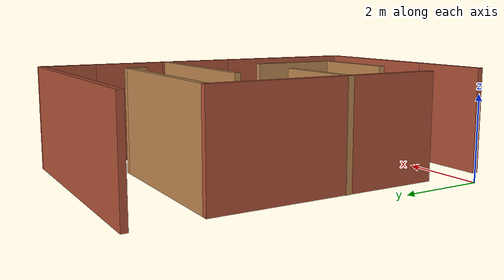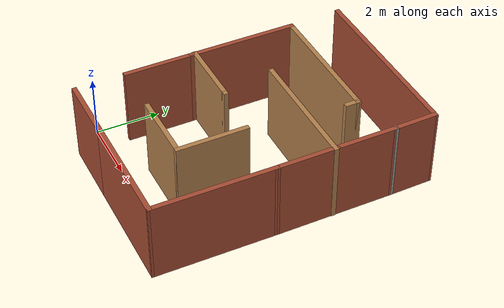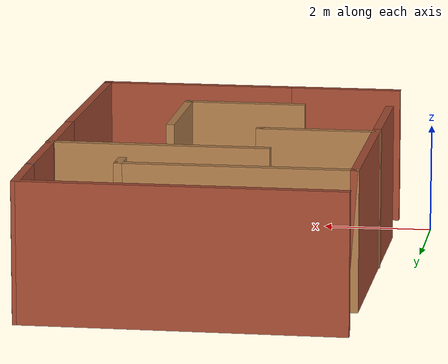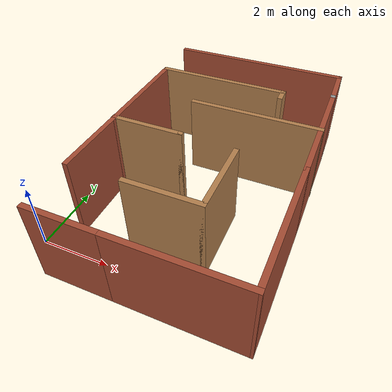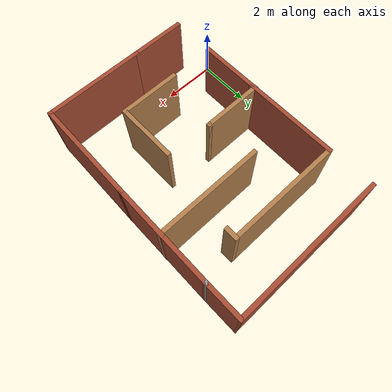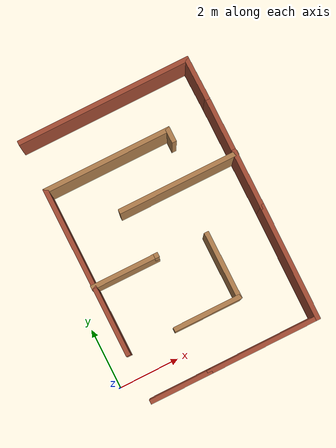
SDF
<?xml version='1.0'?>
<sdf version='1.7'>
  <model name='maze'>
    <pose>3.19342 3.57902 0 0 -0 0</pose>
    <link name='Wall_11'>
      <collision name='Wall_11_Collision'>
        <geometry>
          <box>
            <size>2 0.15 2.5</size>
          </box>
        </geometry>
        <pose>0 0 1.25 0 -0 0</pose>
      </collision>
      <visual name='Wall_11_Visual'>
        <pose>0 0 1.25 0 -0 0</pose>
        <geometry>
          <box>
            <size>2 0.15 2.5</size>
          </box>
        </geometry>
        <material>
          <script>
            <uri>file://media/materials/scripts/gazebo.material</uri>
            <name>Gazebo/Bricks</name>
          </script>
          <ambient>1 1 1 1</ambient>
        </material>
        <meta>
          <layer>0</layer>
        </meta>
      </visual>
      <pose>3.10411 0.27256 0 0 -0 1.5708</pose>
    </link>
    <link name='Wall_12'>
      <collision name='Wall_12_Collision'>
        <geometry>
          <box>
            <size>2 0.15 2.5</size>
          </box>
        </geometry>
        <pose>0 0 1.25 0 -0 0</pose>
      </collision>
      <visual name='Wall_12_Visual'>
        <pose>0 0 1.25 0 -0 0</pose>
        <geometry>
          <box>
            <size>2 0.15 2.5</size>
          </box>
        </geometry>
        <material>
          <script>
            <uri>file://media/materials/scripts/gazebo.material</uri>
            <name>Gazebo/Bricks</name>
          </script>
          <ambient>1 1 1 1</ambient>
        </material>
        <meta>
          <layer>0</layer>
        </meta>
      </visual>
      <pose>3.10411 2.12256 0 0 -0 1.5708</pose>
    </link>
    <link name='Wall_13'>
      <collision name='Wall_13_Collision'>
        <geometry>
          <box>
            <size>0.15 0.15 2.5</size>
          </box>
        </geometry>
        <pose>0 0 1.25 0 -0 0</pose>
      </collision>
      <visual name='Wall_13_Visual'>
        <pose>0 0 1.25 0 -0 0</pose>
        <geometry>
          <box>
            <size>0.15 0.15 2.5</size>
          </box>
        </geometry>
        <material>
          <script>
            <uri>file://media/materials/scripts/gazebo.material</uri>
            <name>Gazebo/Grey</name>
          </script>
          <ambient>1 1 1 1</ambient>
        </material>
        <meta>
          <layer>0</layer>
        </meta>
      </visual>
      <pose>3.10411 3.04756 0 0 -0 0</pose>
    </link>
    <link name='Wall_14'>
      <collision name='Wall_14_Collision'>
        <geometry>
          <box>
            <size>1.45469 0.15 2.5</size>
          </box>
        </geometry>
        <pose>0 0 1.25 0 -0 0</pose>
      </collision>
      <visual name='Wall_14_Visual'>
        <pose>0 0 1.25 0 -0 0</pose>
        <geometry>
          <box>
            <size>1.45469 0.15 2.5</size>
          </box>
        </geometry>
        <material>
          <script>
            <uri>file://media/materials/scripts/gazebo.material</uri>
            <name>Gazebo/Bricks</name>
          </script>
          <ambient>1 1 1 1</ambient>
        </material>
        <meta>
          <layer>0</layer>
        </meta>
      </visual>
      <pose>3.09425 3.69983 0 0 -0 1.58591</pose>
    </link>
    <link name='Wall_19'>
      <collision name='Wall_19_Collision'>
        <geometry>
          <box>
            <size>2.25 0.15 2.5</size>
          </box>
        </geometry>
        <pose>0 0 1.25 0 -0 0</pose>
      </collision>
      <visual name='Wall_19_Visual'>
        <pose>0 0 1.25 0 -0 0</pose>
        <geometry>
          <box>
            <size>2.25 0.15 2.5</size>
          </box>
        </geometry>
        <material>
          <script>
            <uri>file://media/materials/scripts/gazebo.material</uri>
            <name>Gazebo/Bricks</name>
          </script>
          <ambient>1 1 1 1</ambient>
        </material>
        <meta>
          <layer>0</layer>
        </meta>
      </visual>
      <pose>-2.4795 -1.70162 0 0 -0 -1.5708</pose>
    </link>
    <link name='Wall_21'>
      <collision name='Wall_21_Collision'>
        <geometry>
          <box>
            <size>2.25 0.15 2.5</size>
          </box>
        </geometry>
        <pose>0 0 1.25 0 -0 0</pose>
      </collision>
      <visual name='Wall_21_Visual'>
        <pose>0 0 1.25 0 -0 0</pose>
        <geometry>
          <box>
            <size>2.25 0.15 2.5</size>
          </box>
        </geometry>
        <material>
          <script>
            <uri>file://media/materials/scripts/gazebo.material</uri>
            <name>Gazebo/Wood</name>
          </script>
          <ambient>1 1 1 1</ambient>
        </material>
        <meta>
          <layer>0</layer>
        </meta>
      </visual>
      <pose>-1.44658 -0.529258 0 0 -0 0</pose>
    </link>
    <link name='Wall_22'>
      <collision name='Wall_22_Collision'>
        <geometry>
          <box>
            <size>0.15 0.15 2.5</size>
          </box>
        </geometry>
        <pose>0 0 1.25 0 -0 0</pose>
      </collision>
      <visual name='Wall_22_Visual'>
        <pose>0 0 1.25 0 -0 0</pose>
        <geometry>
          <box>
            <size>0.15 0.15 2.5</size>
          </box>
        </geometry>
        <material>
          <script>
            <uri>file://media/materials/scripts/gazebo.material</uri>
            <name>Gazebo/Wood</name>
          </script>
          <ambient>1 1 1 1</ambient>
        </material>
        <meta>
          <layer>0</layer>
        </meta>
      </visual>
      <pose>-0.396583 -0.529258 0 0 -0 0</pose>
    </link>
    <link name='Wall_26'>
      <collision name='Wall_26_Collision'>
        <geometry>
          <box>
            <size>3.5 0.15 2.5</size>
          </box>
        </geometry>
        <pose>0 0 1.25 0 -0 0</pose>
      </collision>
      <visual name='Wall_26_Visual'>
        <pose>0 0 1.25 0 -0 0</pose>
        <geometry>
          <box>
            <size>3.5 0.15 2.5</size>
          </box>
        </geometry>
        <material>
          <script>
            <uri>file://media/materials/scripts/gazebo.material</uri>
            <name>Gazebo/Bricks</name>
          </script>
          <ambient>1 1 1 1</ambient>
        </material>
        <meta>
          <layer>0</layer>
        </meta>
      </visual>
      <pose>-2.4795 1.02338 0 0 -0 1.5708</pose>
    </link>
    <link name='Wall_28'>
      <collision name='Wall_28_Collision'>
        <geometry>
          <box>
            <size>4 0.15 2.5</size>
          </box>
        </geometry>
        <pose>0 0 1.25 0 -0 0</pose>
      </collision>
      <visual name='Wall_28_Visual'>
        <pose>0 0 1.25 0 -0 0</pose>
        <geometry>
          <box>
            <size>4 0.15 2.5</size>
          </box>
        </geometry>
        <material>
          <script>
            <uri>file://media/materials/scripts/gazebo.material</uri>
            <name>Gazebo/Wood</name>
          </script>
          <ambient>1 1 1 1</ambient>
        </material>
        <meta>
          <layer>0</layer>
        </meta>
      </visual>
      <pose>1.19342 1.14199 0 0 -0 3.14159</pose>
    </link>
    <link name='Wall_31'>
      <collision name='Wall_31_Collision'>
        <geometry>
          <box>
            <size>4.25 0.15 2.5</size>
          </box>
        </geometry>
        <pose>0 0 1.25 0 -0 0</pose>
      </collision>
      <visual name='Wall_31_Visual'>
        <pose>0 0 1.25 0 -0 0</pose>
        <geometry>
          <box>
            <size>4.25 0.15 2.5</size>
          </box>
        </geometry>
        <material>
          <script>
            <uri>file://media/materials/scripts/gazebo.material</uri>
            <name>Gazebo/Wood</name>
          </script>
          <ambient>1 1 1 1</ambient>
        </material>
        <meta>
          <layer>0</layer>
        </meta>
      </visual>
      <pose>-0.429501 2.69838 0 0 -0 0</pose>
    </link>
    <link name='Wall_32'>
      <collision name='Wall_32_Collision'>
        <geometry>
          <box>
            <size>0.5 0.15 2.5</size>
          </box>
        </geometry>
        <pose>0 0 1.25 0 -0 0</pose>
      </collision>
      <visual name='Wall_32_Visual'>
        <pose>0 0 1.25 0 -0 0</pose>
        <geometry>
          <box>
            <size>0.5 0.15 2.5</size>
          </box>
        </geometry>
        <material>
          <script>
            <uri>file://media/materials/scripts/gazebo.material</uri>
            <name>Gazebo/Wood</name>
          </script>
          <ambient>1 1 1 1</ambient>
        </material>
        <meta>
          <layer>0</layer>
        </meta>
      </visual>
      <pose>1.6205 2.52338 0 0 -0 -1.5708</pose>
    </link>
    <link name='Wall_34'>
      <collision name='Wall_34_Collision'>
        <geometry>
          <box>
            <size>5.75 0.15 2.5</size>
          </box>
        </geometry>
        <pose>0 0 1.25 0 -0 0</pose>
      </collision>
      <visual name='Wall_34_Visual'>
        <pose>0 0 1.25 0 -0 0</pose>
        <geometry>
          <box>
            <size>5.75 0.15 2.5</size>
          </box>
        </geometry>
        <material>
          <script>
            <uri>file://media/materials/scripts/gazebo.material</uri>
            <name>Gazebo/Bricks</name>
          </script>
          <ambient>1 1 1 1</ambient>
        </material>
        <meta>
          <layer>0</layer>
        </meta>
      </visual>
      <pose>0.284398 4.3521 0 0 -0 3.14159</pose>
    </link>
    <link name='Wall_38'>
      <collision name='Wall_38_Collision'>
        <geometry>
          <box>
            <size>3.75 0.15 2.5</size>
          </box>
        </geometry>
        <pose>0 0 1.25 0 -0 0</pose>
      </collision>
      <visual name='Wall_38_Visual'>
        <pose>0 0 1.25 0 -0 0</pose>
        <geometry>
          <box>
            <size>3.75 0.15 2.5</size>
          </box>
        </geometry>
        <material>
          <script>
            <uri>file://media/materials/scripts/gazebo.material</uri>
            <name>Gazebo/Bricks</name>
          </script>
          <ambient>1 1 1 1</ambient>
        </material>
        <meta>
          <layer>0</layer>
        </meta>
      </visual>
      <pose>1.26529 -4.35244 0 0 -0 0</pose>
    </link>
    <link name='Wall_39'>
      <collision name='Wall_39_Collision'>
        <geometry>
          <box>
            <size>3.8502 0.15 2.5</size>
          </box>
        </geometry>
        <pose>0 0 1.25 0 -0 0</pose>
      </collision>
      <visual name='Wall_39_Visual'>
        <pose>0 0 1.25 0 -0 0</pose>
        <geometry>
          <box>
            <size>3.8502 0.15 2.5</size>
          </box>
        </geometry>
        <material>
          <script>
            <uri>file://media/materials/scripts/gazebo.material</uri>
            <name>Gazebo/Bricks</name>
          </script>
          <ambient>1 1 1 1</ambient>
        </material>
        <meta>
          <layer>0</layer>
        </meta>
      </visual>
      <pose>3.0847 -2.50244 0 0 -0 1.56031</pose>
    </link>
    <link name='Wall_6'>
      <collision name='Wall_6_Collision'>
        <geometry>
          <box>
            <size>2.06118 0.15 2.5</size>
          </box>
        </geometry>
        <pose>0 0 1.25 0 -0 0</pose>
      </collision>
      <visual name='Wall_6_Visual'>
        <pose>0 0 1.25 0 -0 0</pose>
        <geometry>
          <box>
            <size>2.06118 0.15 2.5</size>
          </box>
        </geometry>
        <material>
          <script>
            <uri>file://media/materials/scripts/gazebo.material</uri>
            <name>Gazebo/Bricks</name>
          </script>
          <ambient>1 1 1 1</ambient>
        </material>
        <meta>
          <layer>0</layer>
        </meta>
      </visual>
      <pose>-1.4903 -4.35244 0 0 -0 0</pose>
    </link>
    <link name='Wall_8'>
      <collision name='Wall_8_Collision'>
        <geometry>
          <box>
            <size>2.25 0.15 2.5</size>
          </box>
        </geometry>
        <pose>0 0 1.25 0 -0 0</pose>
      </collision>
      <visual name='Wall_8_Visual'>
        <pose>0 0 1.25 0 -0 0</pose>
        <geometry>
          <box>
            <size>2.25 0.15 2.5</size>
          </box>
        </geometry>
        <material>
          <script>
            <uri>file://media/materials/scripts/gazebo.material</uri>
            <name>Gazebo/Wood</name>
          </script>
          <ambient>1 1 1 1</ambient>
        </material>
        <meta>
          <layer>0</layer>
        </meta>
      </visual>
      <pose>0.204111 -2.75244 0 0 -0 0</pose>
    </link>
    <link name='Wall_9'>
      <collision name='Wall_9_Collision'>
        <geometry>
          <box>
            <size>2.25 0.15 2.5</size>
          </box>
        </geometry>
        <pose>0 0 1.25 0 -0 0</pose>
      </collision>
      <visual name='Wall_9_Visual'>
        <pose>0 0 1.25 0 -0 0</pose>
        <geometry>
          <box>
            <size>2.25 0.15 2.5</size>
          </box>
        </geometry>
        <material>
          <script>
            <uri>file://media/materials/scripts/gazebo.material</uri>
            <name>Gazebo/Wood</name>
          </script>
          <ambient>1 1 1 1</ambient>
        </material>
        <meta>
          <layer>0</layer>
        </meta>
      </visual>
      <pose>1.25411 -1.70244 0 0 -0 1.5708</pose>
    </link>
    <static>1</static>
  </model>
</sdf>
